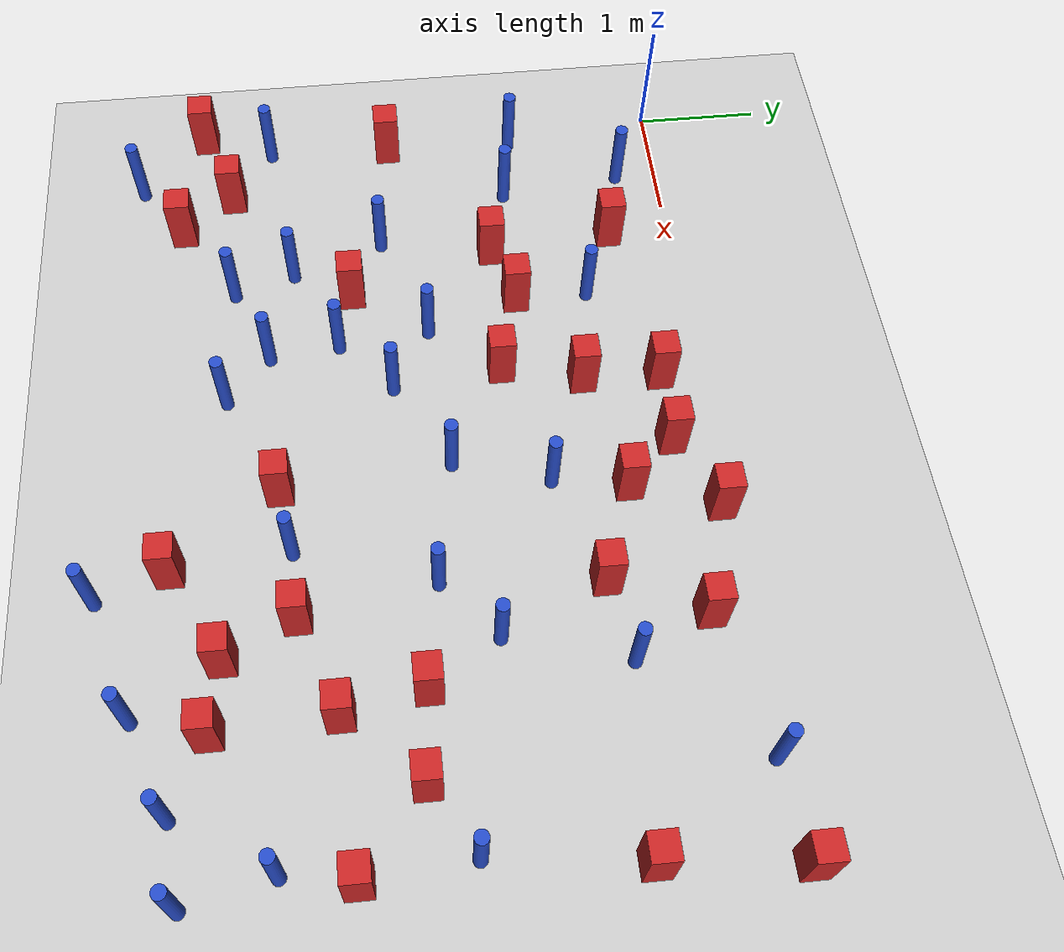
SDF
<sdf version="1.6">
 <world name="default">
  <model name="ground_plane">
   <static>1</static>
   <link name="link">
    <collision name="collision">
     <geometry><plane><normal>0 0 1</normal><size>100 100</size></plane></geometry>
     <surface><friction><ode><mu>100</mu><mu2>50</mu2></ode></friction></surface>
    </collision>
    <visual name="visual">
     <cast_shadows>0</cast_shadows>
     <geometry><plane><normal>0 0 1</normal><size>100 100</size></plane></geometry>
     <material>
      <ambient>1.0 1.0 1.0 1.0</ambient>
      <diffuse>0.8 0.8 0.8 1.0</diffuse>
      <specular>0.01 0.01 0.01 1.000000</specular>
     </material>
    </visual>
   </link>
  </model>
  <model name="NamedLocations">
   <static>true</static>
   <link name="DefaultStart"><pose>8.5 0 0 0 0 3.14</pose></link>
  </model>
  <model name="square_post_obstacle5">
   <static>true</static>
   <pose>5.25231052275 -3.78582455542 8.22691968438e-08 7.2212513382e-06 -7.54495500217e-07 2.29674213826e-05</pose>
   <link name="link">
    <pose>0 0 0.25 0 -0 0</pose>
    <inertial>
     <mass>100</mass>
     <inertia>
      <ixx>0.166667</ixx>
      <ixy>0</ixy>
      <ixz>0</ixz>
      <iyy>0.166667</iyy>
      <iyz>0</iyz>
      <izz>0.166667</izz>
     </inertia>
    </inertial>
    <collision name="collision"><geometry><box><size>.2 .2 .5</size></box></geometry></collision>
    <visual name="visual">
     <geometry><box><size>.2 .2 .5</size></box></geometry>
     <material>
      <script><name>Gazebo/Red</name><uri>file://media/materials/scripts/gazebo.material</uri></script>
     </material>
    </visual>
   </link>
  </model>
  <model name="square_post_obstacle7">
   <static>true</static>
   <pose>4.39493751588 -0.99961755812 8.22691968438e-08 7.2212513382e-06 -7.54495500217e-07 2.29674213826e-05</pose>
   <link name="link">
    <pose>0 0 0.25 0 -0 0</pose>
    <inertial>
     <mass>100</mass>
     <inertia>
      <ixx>0.166667</ixx>
      <ixy>0</ixy>
      <ixz>0</ixz>
      <iyy>0.166667</iyy>
      <iyz>0</iyz>
      <izz>0.166667</izz>
     </inertia>
    </inertial>
    <collision name="collision"><geometry><box><size>.2 .2 .5</size></box></geometry></collision>
    <visual name="visual">
     <geometry><box><size>.2 .2 .5</size></box></geometry>
     <material>
      <script><name>Gazebo/Red</name><uri>file://media/materials/scripts/gazebo.material</uri></script>
     </material>
    </visual>
   </link>
  </model>
  <model name="pole_obstacle8">
   <static>true</static>
   <pose>3.5580969233 -1.27488062741 2.88873142074e-08 -9.90536689395e-09 4.60219949e-07 -1.20965994953e-07</pose>
   <link name="link">
    <pose>0 0 0.3 0 -0 0</pose>
    <inertial>
     <mass>1</mass>
     <inertia><ixx>0.145833</ixx><ixy>0</ixy><ixz>0</ixz><iyy>0.145833</iyy><iyz>0</iyz><izz>0.125</izz></inertia>
    </inertial>
    <collision name="collision">
     <geometry><cylinder><radius>0.05</radius><length>.6</length></cylinder></geometry>
    </collision>
    <visual name="visual">
     <geometry><cylinder><radius>0.05</radius><length>.6</length></cylinder></geometry>
     <material>
      <script><name>Gazebo/Blue</name><uri>file://media/materials/scripts/gazebo.material</uri></script>
     </material>
    </visual>
   </link>
  </model>
  <model name="square_post_obstacle20">
   <static>true</static>
   <pose>-0.0746601059018 -3.83380512901 8.22691968438e-08 7.2212513382e-06 -7.54495500217e-07 2.29674213826e-05</pose>
   <link name="link">
    <pose>0 0 0.25 0 -0 0</pose>
    <inertial>
     <mass>100</mass>
     <inertia>
      <ixx>0.166667</ixx>
      <ixy>0</ixy>
      <ixz>0</ixz>
      <iyy>0.166667</iyy>
      <iyz>0</iyz>
      <izz>0.166667</izz>
     </inertia>
    </inertial>
    <collision name="collision"><geometry><box><size>.2 .2 .5</size></box></geometry></collision>
    <visual name="visual">
     <geometry><box><size>.2 .2 .5</size></box></geometry>
     <material>
      <script><name>Gazebo/Red</name><uri>file://media/materials/scripts/gazebo.material</uri></script>
     </material>
    </visual>
   </link>
  </model>
  <model name="pole_obstacle24">
   <static>true</static>
   <pose>4.74711065186 -1.78429613394 2.88873142074e-08 -9.90536689445e-09 4.60219948999e-07 -1.20965994956e-07</pose>
   <link name="link">
    <pose>0 0 0.3 0 -0 0</pose>
    <inertial>
     <mass>1</mass>
     <inertia><ixx>0.145833</ixx><ixy>0</ixy><ixz>0</ixz><iyy>0.145833</iyy><iyz>0</iyz><izz>0.125</izz></inertia>
    </inertial>
    <collision name="collision">
     <geometry><cylinder><radius>0.05</radius><length>.6</length></cylinder></geometry>
    </collision>
    <visual name="visual">
     <geometry><cylinder><radius>0.05</radius><length>.6</length></cylinder></geometry>
     <material>
      <script><name>Gazebo/Blue</name><uri>file://media/materials/scripts/gazebo.material</uri></script>
     </material>
    </visual>
   </link>
  </model>
  <model name="pole_obstacle31">
   <static>true</static>
   <pose>6.34164546797 -3.9783119384 2.88873142074e-08 -9.90536690067e-09 4.60219948984e-07 -1.20965994963e-07</pose>
   <link name="link">
    <pose>0 0 0.3 0 -0 0</pose>
    <inertial>
     <mass>1</mass>
     <inertia><ixx>0.145833</ixx><ixy>0</ixy><ixz>0</ixz><iyy>0.145833</iyy><iyz>0</iyz><izz>0.125</izz></inertia>
    </inertial>
    <collision name="collision">
     <geometry><cylinder><radius>0.05</radius><length>.6</length></cylinder></geometry>
    </collision>
    <visual name="visual">
     <geometry><cylinder><radius>0.05</radius><length>.6</length></cylinder></geometry>
     <material>
      <script><name>Gazebo/Blue</name><uri>file://media/materials/scripts/gazebo.material</uri></script>
     </material>
    </visual>
   </link>
  </model>
  <model name="pole_obstacle33">
   <static>true</static>
   <pose>2.20476175612 -2.7829994191 2.88873142074e-08 -9.90536690232e-09 4.6021994898e-07 -1.20965994968e-07</pose>
   <link name="link">
    <pose>0 0 0.3 0 -0 0</pose>
    <inertial>
     <mass>1</mass>
     <inertia><ixx>0.145833</ixx><ixy>0</ixy><ixz>0</ixz><iyy>0.145833</iyy><iyz>0</iyz><izz>0.125</izz></inertia>
    </inertial>
    <collision name="collision">
     <geometry><cylinder><radius>0.05</radius><length>.6</length></cylinder></geometry>
    </collision>
    <visual name="visual">
     <geometry><cylinder><radius>0.05</radius><length>.6</length></cylinder></geometry>
     <material>
      <script><name>Gazebo/Blue</name><uri>file://media/materials/scripts/gazebo.material</uri></script>
     </material>
    </visual>
   </link>
  </model>
  <model name="pole_obstacle34">
   <static>true</static>
   <pose>2.64553999613 -3.66608559205 2.88873142074e-08 -9.90536690232e-09 4.6021994898e-07 -1.20965994968e-07</pose>
   <link name="link">
    <pose>0 0 0.3 0 -0 0</pose>
    <inertial>
     <mass>1</mass>
     <inertia><ixx>0.145833</ixx><ixy>0</ixy><ixz>0</ixz><iyy>0.145833</iyy><iyz>0</iyz><izz>0.125</izz></inertia>
    </inertial>
    <collision name="collision">
     <geometry><cylinder><radius>0.05</radius><length>.6</length></cylinder></geometry>
    </collision>
    <visual name="visual">
     <geometry><cylinder><radius>0.05</radius><length>.6</length></cylinder></geometry>
     <material>
      <script><name>Gazebo/Blue</name><uri>file://media/materials/scripts/gazebo.material</uri></script>
     </material>
    </visual>
   </link>
  </model>
  <model name="square_post_obstacle39">
   <static>true</static>
   <pose>2.54407811036 -1.54122637929 8.22691968438e-08 7.2212513382e-06 -7.54495500217e-07 2.29674213826e-05</pose>
   <link name="link">
    <pose>0 0 0.25 0 -0 0</pose>
    <inertial>
     <mass>100</mass>
     <inertia>
      <ixx>0.166667</ixx>
      <ixy>0</ixy>
      <ixz>0</ixz>
      <iyy>0.166667</iyy>
      <iyz>0</iyz>
      <izz>0.166667</izz>
     </inertia>
    </inertial>
    <collision name="collision"><geometry><box><size>.2 .2 .5</size></box></geometry></collision>
    <visual name="visual">
     <geometry><box><size>.2 .2 .5</size></box></geometry>
     <material>
      <script><name>Gazebo/Red</name><uri>file://media/materials/scripts/gazebo.material</uri></script>
     </material>
    </visual>
   </link>
  </model>
  <model name="pole_obstacle39">
   <static>true</static>
   <pose>1.46683004817 -3.11833160648 2.88873142074e-08 -9.90536689791e-09 4.6021994899e-07 -1.20965994959e-07</pose>
   <link name="link">
    <pose>0 0 0.3 0 -0 0</pose>
    <inertial>
     <mass>1</mass>
     <inertia><ixx>0.145833</ixx><ixy>0</ixy><ixz>0</ixz><iyy>0.145833</iyy><iyz>0</iyz><izz>0.125</izz></inertia>
    </inertial>
    <collision name="collision">
     <geometry><cylinder><radius>0.05</radius><length>.6</length></cylinder></geometry>
    </collision>
    <visual name="visual">
     <geometry><cylinder><radius>0.05</radius><length>.6</length></cylinder></geometry>
     <material>
      <script><name>Gazebo/Blue</name><uri>file://media/materials/scripts/gazebo.material</uri></script>
     </material>
    </visual>
   </link>
  </model>
  <model name="square_post_obstacle45">
   <static>true</static>
   <pose>1.27861284913 -0.506588063698 8.22691968438e-08 7.22125133819e-06 -7.54495500217e-07 2.29674213826e-05</pose>
   <link name="link">
    <pose>0 0 0.25 0 -0 0</pose>
    <inertial>
     <mass>100</mass>
     <inertia>
      <ixx>0.166667</ixx>
      <ixy>0</ixy>
      <ixz>0</ixz>
      <iyy>0.166667</iyy>
      <iyz>0</iyz>
      <izz>0.166667</izz>
     </inertia>
    </inertial>
    <collision name="collision"><geometry><box><size>.2 .2 .5</size></box></geometry></collision>
    <visual name="visual">
     <geometry><box><size>.2 .2 .5</size></box></geometry>
     <material>
      <script><name>Gazebo/Red</name><uri>file://media/materials/scripts/gazebo.material</uri></script>
     </material>
    </visual>
   </link>
  </model>
  <model name="square_post_obstacle53">
   <static>true</static>
   <pose>2.69473295244 -0.924964756246 8.22691968438e-08 7.2212513382e-06 -7.54495500217e-07 2.29674213826e-05</pose>
   <link name="link">
    <pose>0 0 0.25 0 -0 0</pose>
    <inertial>
     <mass>100</mass>
     <inertia>
      <ixx>0.166667</ixx>
      <ixy>0</ixy>
      <ixz>0</ixz>
      <iyy>0.166667</iyy>
      <iyz>0</iyz>
      <izz>0.166667</izz>
     </inertia>
    </inertial>
    <collision name="collision"><geometry><box><size>.2 .2 .5</size></box></geometry></collision>
    <visual name="visual">
     <geometry><box><size>.2 .2 .5</size></box></geometry>
     <material>
      <script><name>Gazebo/Red</name><uri>file://media/materials/scripts/gazebo.material</uri></script>
     </material>
    </visual>
   </link>
  </model>
  <model name="pole_obstacle51">
   <static>true</static>
   <pose>1.62181083183 -3.59654554186 2.88873142074e-08 -9.90536689791e-09 4.6021994899e-07 -1.20965994959e-07</pose>
   <link name="link">
    <pose>0 0 0.3 0 -0 0</pose>
    <inertial>
     <mass>1</mass>
     <inertia><ixx>0.145833</ixx><ixy>0</ixy><ixz>0</ixz><iyy>0.145833</iyy><iyz>0</iyz><izz>0.125</izz></inertia>
    </inertial>
    <collision name="collision">
     <geometry><cylinder><radius>0.05</radius><length>.6</length></cylinder></geometry>
    </collision>
    <visual name="visual">
     <geometry><cylinder><radius>0.05</radius><length>.6</length></cylinder></geometry>
     <material>
      <script><name>Gazebo/Blue</name><uri>file://media/materials/scripts/gazebo.material</uri></script>
     </material>
    </visual>
   </link>
  </model>
  <model name="square_post_obstacle59">
   <static>true</static>
   <pose>3.66049398225 -0.718242615236 8.22691968438e-08 7.2212513382e-06 -7.54495500217e-07 2.29674213826e-05</pose>
   <link name="link">
    <pose>0 0 0.25 0 -0 0</pose>
    <inertial>
     <mass>100</mass>
     <inertia>
      <ixx>0.166667</ixx>
      <ixy>0</ixy>
      <ixz>0</ixz>
      <iyy>0.166667</iyy>
      <iyz>0</iyz>
      <izz>0.166667</izz>
     </inertia>
    </inertial>
    <collision name="collision"><geometry><box><size>.2 .2 .5</size></box></geometry></collision>
    <visual name="visual">
     <geometry><box><size>.2 .2 .5</size></box></geometry>
     <material>
      <script><name>Gazebo/Red</name><uri>file://media/materials/scripts/gazebo.material</uri></script>
     </material>
    </visual>
   </link>
  </model>
  <model name="square_post_obstacle62">
   <static>true</static>
   <pose>5.07637719774 -2.30974172072 8.22691968438e-08 7.2212513382e-06 -7.54495500217e-07 2.29674213826e-05</pose>
   <link name="link">
    <pose>0 0 0.25 0 -0 0</pose>
    <inertial>
     <mass>100</mass>
     <inertia>
      <ixx>0.166667</ixx>
      <ixy>0</ixy>
      <ixz>0</ixz>
      <iyy>0.166667</iyy>
      <iyz>0</iyz>
      <izz>0.166667</izz>
     </inertia>
    </inertial>
    <collision name="collision"><geometry><box><size>.2 .2 .5</size></box></geometry></collision>
    <visual name="visual">
     <geometry><box><size>.2 .2 .5</size></box></geometry>
     <material>
      <script><name>Gazebo/Red</name><uri>file://media/materials/scripts/gazebo.material</uri></script>
     </material>
    </visual>
   </link>
  </model>
  <model name="pole_obstacle68">
   <static>true</static>
   <pose>5.00072936189 -0.885637132545 2.88873142074e-08 -9.90536689837e-09 4.60219948989e-07 -1.2096599496e-07</pose>
   <link name="link">
    <pose>0 0 0.3 0 -0 0</pose>
    <inertial>
     <mass>1</mass>
     <inertia><ixx>0.145833</ixx><ixy>0</ixy><ixz>0</ixz><iyy>0.145833</iyy><iyz>0</iyz><izz>0.125</izz></inertia>
    </inertial>
    <collision name="collision">
     <geometry><cylinder><radius>0.05</radius><length>.6</length></cylinder></geometry>
    </collision>
    <visual name="visual">
     <geometry><cylinder><radius>0.05</radius><length>.6</length></cylinder></geometry>
     <material>
      <script><name>Gazebo/Blue</name><uri>file://media/materials/scripts/gazebo.material</uri></script>
     </material>
    </visual>
   </link>
  </model>
  <model name="pole_obstacle71">
   <static>true</static>
   <pose>0.651517139629 -0.337924589644 2.88873142074e-08 -9.90536689558e-09 4.60219948996e-07 -1.20965994957e-07</pose>
   <link name="link">
    <pose>0 0 0.3 0 -0 0</pose>
    <inertial>
     <mass>1</mass>
     <inertia><ixx>0.145833</ixx><ixy>0</ixy><ixz>0</ixz><iyy>0.145833</iyy><iyz>0</iyz><izz>0.125</izz></inertia>
    </inertial>
    <collision name="collision">
     <geometry><cylinder><radius>0.05</radius><length>.6</length></cylinder></geometry>
    </collision>
    <visual name="visual">
     <geometry><cylinder><radius>0.05</radius><length>.6</length></cylinder></geometry>
     <material>
      <script><name>Gazebo/Blue</name><uri>file://media/materials/scripts/gazebo.material</uri></script>
     </material>
    </visual>
   </link>
  </model>
  <model name="square_post_obstacle79">
   <static>true</static>
   <pose>2.71833655449 -0.324334376529 8.22691968438e-08 7.2212513382e-06 -7.54495500217e-07 2.29674213826e-05</pose>
   <link name="link">
    <pose>0 0 0.25 0 -0 0</pose>
    <inertial>
     <mass>100</mass>
     <inertia>
      <ixx>0.166667</ixx>
      <ixy>0</ixy>
      <ixz>0</ixz>
      <iyy>0.166667</iyy>
      <iyz>0</iyz>
      <izz>0.166667</izz>
     </inertia>
    </inertial>
    <collision name="collision"><geometry><box><size>.2 .2 .5</size></box></geometry></collision>
    <visual name="visual">
     <geometry><box><size>.2 .2 .5</size></box></geometry>
     <material>
      <script><name>Gazebo/Red</name><uri>file://media/materials/scripts/gazebo.material</uri></script>
     </material>
    </visual>
   </link>
  </model>
  <model name="square_post_obstacle83">
   <static>true</static>
   <pose>1.37728152292 -1.49963937345 8.22691968438e-08 7.2212513382e-06 -7.54495500217e-07 2.29674213826e-05</pose>
   <link name="link">
    <pose>0 0 0.25 0 -0 0</pose>
    <inertial>
     <mass>100</mass>
     <inertia>
      <ixx>0.166667</ixx>
      <ixy>0</ixy>
      <ixz>0</ixz>
      <iyy>0.166667</iyy>
      <iyz>0</iyz>
      <izz>0.166667</izz>
     </inertia>
    </inertial>
    <collision name="collision"><geometry><box><size>.2 .2 .5</size></box></geometry></collision>
    <visual name="visual">
     <geometry><box><size>.2 .2 .5</size></box></geometry>
     <material>
      <script><name>Gazebo/Red</name><uri>file://media/materials/scripts/gazebo.material</uri></script>
     </material>
    </visual>
   </link>
  </model>
  <model name="pole_obstacle97">
   <static>true</static>
   <pose>1.20911343873 -2.3919930358 2.88873142074e-08 -9.90536689791e-09 4.6021994899e-07 -1.20965994959e-07</pose>
   <link name="link">
    <pose>0 0 0.3 0 -0 0</pose>
    <inertial>
     <mass>1</mass>
     <inertia><ixx>0.145833</ixx><ixy>0</ixy><ixz>0</ixz><iyy>0.145833</iyy><iyz>0</iyz><izz>0.125</izz></inertia>
    </inertial>
    <collision name="collision">
     <geometry><cylinder><radius>0.05</radius><length>.6</length></cylinder></geometry>
    </collision>
    <visual name="visual">
     <geometry><cylinder><radius>0.05</radius><length>.6</length></cylinder></geometry>
     <material>
      <script><name>Gazebo/Blue</name><uri>file://media/materials/scripts/gazebo.material</uri></script>
     </material>
    </visual>
   </link>
  </model>
  <model name="pole_obstacle98">
   <static>true</static>
   <pose>6.21024450876 -2.07663113503 2.88873142074e-08 -9.90536690245e-09 4.6021994898e-07 -1.20965994966e-07</pose>
   <link name="link">
    <pose>0 0 0.3 0 -0 0</pose>
    <inertial>
     <mass>1</mass>
     <inertia><ixx>0.145833</ixx><ixy>0</ixy><ixz>0</ixz><iyy>0.145833</iyy><iyz>0</iyz><izz>0.125</izz></inertia>
    </inertial>
    <collision name="collision">
     <geometry><cylinder><radius>0.05</radius><length>.6</length></cylinder></geometry>
    </collision>
    <visual name="visual">
     <geometry><cylinder><radius>0.05</radius><length>.6</length></cylinder></geometry>
     <material>
      <script><name>Gazebo/Blue</name><uri>file://media/materials/scripts/gazebo.material</uri></script>
     </material>
    </visual>
   </link>
  </model>
  <model name="pole_obstacle101">
   <static>true</static>
   <pose>4.22439033161 -4.59943757602 2.88873142074e-08 -9.90536690842e-09 4.60219948965e-07 -1.20965994976e-07</pose>
   <link name="link">
    <pose>0 0 0.3 0 -0 0</pose>
    <inertial>
     <mass>1</mass>
     <inertia><ixx>0.145833</ixx><ixy>0</ixy><ixz>0</ixz><iyy>0.145833</iyy><iyz>0</iyz><izz>0.125</izz></inertia>
    </inertial>
    <collision name="collision">
     <geometry><cylinder><radius>0.05</radius><length>.6</length></cylinder></geometry>
    </collision>
    <visual name="visual">
     <geometry><cylinder><radius>0.05</radius><length>.6</length></cylinder></geometry>
     <material>
      <script><name>Gazebo/Blue</name><uri>file://media/materials/scripts/gazebo.material</uri></script>
     </material>
    </visual>
   </link>
  </model>
  <model name="pole_obstacle103">
   <static>true</static>
   <pose>5.78365856 -4.05170592008 2.88873142074e-08 -9.90536690842e-09 4.60219948965e-07 -1.20965994976e-07</pose>
   <link name="link">
    <pose>0 0 0.3 0 -0 0</pose>
    <inertial>
     <mass>1</mass>
     <inertia><ixx>0.145833</ixx><ixy>0</ixy><ixz>0</ixz><iyy>0.145833</iyy><iyz>0</iyz><izz>0.125</izz></inertia>
    </inertial>
    <collision name="collision">
     <geometry><cylinder><radius>0.05</radius><length>.6</length></cylinder></geometry>
    </collision>
    <visual name="visual">
     <geometry><cylinder><radius>0.05</radius><length>.6</length></cylinder></geometry>
     <material>
      <script><name>Gazebo/Blue</name><uri>file://media/materials/scripts/gazebo.material</uri></script>
     </material>
    </visual>
   </link>
  </model>
  <model name="pole_obstacle118">
   <static>true</static>
   <pose>0.126872830667 -3.27652271314 2.88873142074e-08 -9.90536692387e-09 4.60219948929e-07 -1.20965994988e-07</pose>
   <link name="link">
    <pose>0 0 0.3 0 -0 0</pose>
    <inertial>
     <mass>1</mass>
     <inertia><ixx>0.145833</ixx><ixy>0</ixy><ixz>0</ixz><iyy>0.145833</iyy><iyz>0</iyz><izz>0.125</izz></inertia>
    </inertial>
    <collision name="collision">
     <geometry><cylinder><radius>0.05</radius><length>.6</length></cylinder></geometry>
    </collision>
    <visual name="visual">
     <geometry><cylinder><radius>0.05</radius><length>.6</length></cylinder></geometry>
     <material>
      <script><name>Gazebo/Blue</name><uri>file://media/materials/scripts/gazebo.material</uri></script>
     </material>
    </visual>
   </link>
  </model>
  <model name="square_post_obstacle111">
   <static>true</static>
   <pose>5.71397313503 -2.37138300832 8.22691968438e-08 7.2212513382e-06 -7.54495500217e-07 2.29674213826e-05</pose>
   <link name="link">
    <pose>0 0 0.25 0 -0 0</pose>
    <inertial>
     <mass>100</mass>
     <inertia>
      <ixx>0.166667</ixx>
      <ixy>0</ixy>
      <ixz>0</ixz>
      <iyy>0.166667</iyy>
      <iyz>0</iyz>
      <izz>0.166667</izz>
     </inertia>
    </inertial>
    <collision name="collision"><geometry><box><size>.2 .2 .5</size></box></geometry></collision>
    <visual name="visual">
     <geometry><box><size>.2 .2 .5</size></box></geometry>
     <material>
      <script><name>Gazebo/Red</name><uri>file://media/materials/scripts/gazebo.material</uri></script>
     </material>
    </visual>
   </link>
  </model>
  <model name="pole_obstacle123">
   <static>true</static>
   <pose>6.19863366548 -3.34782479325 2.88873142074e-08 -9.90536690245e-09 4.6021994898e-07 -1.20965994966e-07</pose>
   <link name="link">
    <pose>0 0 0.3 0 -0 0</pose>
    <inertial>
     <mass>1</mass>
     <inertia><ixx>0.145833</ixx><ixy>0</ixy><ixz>0</ixz><iyy>0.145833</iyy><iyz>0</iyz><izz>0.125</izz></inertia>
    </inertial>
    <collision name="collision">
     <geometry><cylinder><radius>0.05</radius><length>.6</length></cylinder></geometry>
    </collision>
    <visual name="visual">
     <geometry><cylinder><radius>0.05</radius><length>.6</length></cylinder></geometry>
     <material>
      <script><name>Gazebo/Blue</name><uri>file://media/materials/scripts/gazebo.material</uri></script>
     </material>
    </visual>
   </link>
  </model>
  <model name="pole_obstacle124">
   <static>true</static>
   <pose>3.34553705609 -1.99699254514 2.88873142074e-08 -9.90536689589e-09 4.60219948995e-07 -1.20965994957e-07</pose>
   <link name="link">
    <pose>0 0 0.3 0 -0 0</pose>
    <inertial>
     <mass>1</mass>
     <inertia><ixx>0.145833</ixx><ixy>0</ixy><ixz>0</ixz><iyy>0.145833</iyy><iyz>0</iyz><izz>0.125</izz></inertia>
    </inertial>
    <collision name="collision">
     <geometry><cylinder><radius>0.05</radius><length>.6</length></cylinder></geometry>
    </collision>
    <visual name="visual">
     <geometry><cylinder><radius>0.05</radius><length>.6</length></cylinder></geometry>
     <material>
      <script><name>Gazebo/Blue</name><uri>file://media/materials/scripts/gazebo.material</uri></script>
     </material>
    </visual>
   </link>
  </model>
  <model name="pole_obstacle139">
   <static>true</static>
   <pose>5.75138282624 -0.0711206350628 2.88873142074e-08 -9.90536689153e-09 4.60219949006e-07 -1.20965994951e-07</pose>
   <link name="link">
    <pose>0 0 0.3 0 -0 0</pose>
    <inertial>
     <mass>1</mass>
     <inertia><ixx>0.145833</ixx><ixy>0</ixy><ixz>0</ixz><iyy>0.145833</iyy><iyz>0</iyz><izz>0.125</izz></inertia>
    </inertial>
    <collision name="collision">
     <geometry><cylinder><radius>0.05</radius><length>.6</length></cylinder></geometry>
    </collision>
    <visual name="visual">
     <geometry><cylinder><radius>0.05</radius><length>.6</length></cylinder></geometry>
     <material>
      <script><name>Gazebo/Blue</name><uri>file://media/materials/scripts/gazebo.material</uri></script>
     </material>
    </visual>
   </link>
  </model>
  <model name="square_post_obstacle126">
   <static>true</static>
   <pose>0.951937427173 -4.00861531492 8.22691968438e-08 7.22125133819e-06 -7.54495500217e-07 2.29674213826e-05</pose>
   <link name="link">
    <pose>0 0 0.25 0 -0 0</pose>
    <inertial>
     <mass>100</mass>
     <inertia>
      <ixx>0.166667</ixx>
      <ixy>0</ixy>
      <ixz>0</ixz>
      <iyy>0.166667</iyy>
      <iyz>0</iyz>
      <izz>0.166667</izz>
     </inertia>
    </inertial>
    <collision name="collision"><geometry><box><size>.2 .2 .5</size></box></geometry></collision>
    <visual name="visual">
     <geometry><box><size>.2 .2 .5</size></box></geometry>
     <material>
      <script><name>Gazebo/Red</name><uri>file://media/materials/scripts/gazebo.material</uri></script>
     </material>
    </visual>
   </link>
  </model>
  <model name="square_post_obstacle128">
   <static>true</static>
   <pose>4.70815853891 -0.314623839095 8.22691968438e-08 7.2212513382e-06 -7.54495500217e-07 2.29674213826e-05</pose>
   <link name="link">
    <pose>0 0 0.25 0 -0 0</pose>
    <inertial>
     <mass>100</mass>
     <inertia>
      <ixx>0.166667</ixx>
      <ixy>0</ixy>
      <ixz>0</ixz>
      <iyy>0.166667</iyy>
      <iyz>0</iyz>
      <izz>0.166667</izz>
     </inertia>
    </inertial>
    <collision name="collision"><geometry><box><size>.2 .2 .5</size></box></geometry></collision>
    <visual name="visual">
     <geometry><box><size>.2 .2 .5</size></box></geometry>
     <material>
      <script><name>Gazebo/Red</name><uri>file://media/materials/scripts/gazebo.material</uri></script>
     </material>
    </visual>
   </link>
  </model>
  <model name="square_post_obstacle135">
   <static>true</static>
   <pose>4.4872487217 -3.17603244453 8.22691968438e-08 7.2212513382e-06 -7.54495500217e-07 2.29674213826e-05</pose>
   <link name="link">
    <pose>0 0 0.25 0 -0 0</pose>
    <inertial>
     <mass>100</mass>
     <inertia>
      <ixx>0.166667</ixx>
      <ixy>0</ixy>
      <ixz>0</ixz>
      <iyy>0.166667</iyy>
      <iyz>0</iyz>
      <izz>0.166667</izz>
     </inertia>
    </inertial>
    <collision name="collision"><geometry><box><size>.2 .2 .5</size></box></geometry></collision>
    <visual name="visual">
     <geometry><box><size>.2 .2 .5</size></box></geometry>
     <material>
      <script><name>Gazebo/Red</name><uri>file://media/materials/scripts/gazebo.material</uri></script>
     </material>
    </visual>
   </link>
  </model>
  <model name="pole_obstacle146">
   <static>true</static>
   <pose>5.1091740648 -4.31907956923 2.88873142074e-08 -9.90536690842e-09 4.60219948965e-07 -1.20965994976e-07</pose>
   <link name="link">
    <pose>0 0 0.3 0 -0 0</pose>
    <inertial>
     <mass>1</mass>
     <inertia><ixx>0.145833</ixx><ixy>0</ixy><ixz>0</ixz><iyy>0.145833</iyy><iyz>0</iyz><izz>0.125</izz></inertia>
    </inertial>
    <collision name="collision">
     <geometry><cylinder><radius>0.05</radius><length>.6</length></cylinder></geometry>
    </collision>
    <visual name="visual">
     <geometry><cylinder><radius>0.05</radius><length>.6</length></cylinder></geometry>
     <material>
      <script><name>Gazebo/Blue</name><uri>file://media/materials/scripts/gazebo.material</uri></script>
     </material>
    </visual>
   </link>
  </model>
  <model name="pole_obstacle148">
   <static>true</static>
   <pose>4.30077741097 -2.1749800853 2.88873142074e-08 -9.90536690245e-09 4.6021994898e-07 -1.20965994966e-07</pose>
   <link name="link">
    <pose>0 0 0.3 0 -0 0</pose>
    <inertial>
     <mass>1</mass>
     <inertia><ixx>0.145833</ixx><ixy>0</ixy><ixz>0</ixz><iyy>0.145833</iyy><iyz>0</iyz><izz>0.125</izz></inertia>
    </inertial>
    <collision name="collision">
     <geometry><cylinder><radius>0.05</radius><length>.6</length></cylinder></geometry>
    </collision>
    <visual name="visual">
     <geometry><cylinder><radius>0.05</radius><length>.6</length></cylinder></geometry>
     <material>
      <script><name>Gazebo/Blue</name><uri>file://media/materials/scripts/gazebo.material</uri></script>
     </material>
    </visual>
   </link>
  </model>
  <model name="square_post_obstacle139">
   <static>true</static>
   <pose>6.34236695522 -0.985701565183 8.22691968438e-08 7.2212513382e-06 -7.54495500217e-07 2.29674213826e-05</pose>
   <link name="link">
    <pose>0 0 0.25 0 -0 0</pose>
    <inertial>
     <mass>100</mass>
     <inertia>
      <ixx>0.166667</ixx>
      <ixy>0</ixy>
      <ixz>0</ixz>
      <iyy>0.166667</iyy>
      <iyz>0</iyz>
      <izz>0.166667</izz>
     </inertia>
    </inertial>
    <collision name="collision"><geometry><box><size>.2 .2 .5</size></box></geometry></collision>
    <visual name="visual">
     <geometry><box><size>.2 .2 .5</size></box></geometry>
     <material>
      <script><name>Gazebo/Red</name><uri>file://media/materials/scripts/gazebo.material</uri></script>
     </material>
    </visual>
   </link>
  </model>
  <model name="square_post_obstacle140">
   <static>true</static>
   <pose>3.46773946944 -3.27646881182 8.22691968438e-08 7.2212513382e-06 -7.54495500217e-07 2.29674213826e-05</pose>
   <link name="link">
    <pose>0 0 0.25 0 -0 0</pose>
    <inertial>
     <mass>100</mass>
     <inertia>
      <ixx>0.166667</ixx>
      <ixy>0</ixy>
      <ixz>0</ixz>
      <iyy>0.166667</iyy>
      <iyz>0</iyz>
      <izz>0.166667</izz>
     </inertia>
    </inertial>
    <collision name="collision"><geometry><box><size>.2 .2 .5</size></box></geometry></collision>
    <visual name="visual">
     <geometry><box><size>.2 .2 .5</size></box></geometry>
     <material>
      <script><name>Gazebo/Red</name><uri>file://media/materials/scripts/gazebo.material</uri></script>
     </material>
    </visual>
   </link>
  </model>
  <model name="pole_obstacle159">
   <static>true</static>
   <pose>2.12559143675 -2.07253581282 2.88873142074e-08 -9.90536690232e-09 4.6021994898e-07 -1.20965994968e-07</pose>
   <link name="link">
    <pose>0 0 0.3 0 -0 0</pose>
    <inertial>
     <mass>1</mass>
     <inertia><ixx>0.145833</ixx><ixy>0</ixy><ixz>0</ixz><iyy>0.145833</iyy><iyz>0</iyz><izz>0.125</izz></inertia>
    </inertial>
    <collision name="collision">
     <geometry><cylinder><radius>0.05</radius><length>.6</length></cylinder></geometry>
    </collision>
    <visual name="visual">
     <geometry><cylinder><radius>0.05</radius><length>.6</length></cylinder></geometry>
     <material>
      <script><name>Gazebo/Blue</name><uri>file://media/materials/scripts/gazebo.material</uri></script>
     </material>
    </visual>
   </link>
  </model>
  <model name="square_post_obstacle157">
   <static>true</static>
   <pose>4.04915297837 -4.06937655511 8.22691968438e-08 7.2212513382e-06 -7.54495500217e-07 2.29674213826e-05</pose>
   <link name="link">
    <pose>0 0 0.25 0 -0 0</pose>
    <inertial>
     <mass>100</mass>
     <inertia>
      <ixx>0.166667</ixx>
      <ixy>0</ixy>
      <ixz>0</ixz>
      <iyy>0.166667</iyy>
      <iyz>0</iyz>
      <izz>0.166667</izz>
     </inertia>
    </inertial>
    <collision name="collision"><geometry><box><size>.2 .2 .5</size></box></geometry></collision>
    <visual name="visual">
     <geometry><box><size>.2 .2 .5</size></box></geometry>
     <material>
      <script><name>Gazebo/Red</name><uri>file://media/materials/scripts/gazebo.material</uri></script>
     </material>
    </visual>
   </link>
  </model>
  <model name="pole_obstacle165">
   <static>true</static>
   <pose>0.769194883767 -1.32213522026 2.88873142074e-08 -9.90536689855e-09 4.60219948989e-07 -1.20965994962e-07</pose>
   <link name="link">
    <pose>0 0 0.3 0 -0 0</pose>
    <inertial>
     <mass>1</mass>
     <inertia><ixx>0.145833</ixx><ixy>0</ixy><ixz>0</ixz><iyy>0.145833</iyy><iyz>0</iyz><izz>0.125</izz></inertia>
    </inertial>
    <collision name="collision">
     <geometry><cylinder><radius>0.05</radius><length>.6</length></cylinder></geometry>
    </collision>
    <visual name="visual">
     <geometry><cylinder><radius>0.05</radius><length>.6</length></cylinder></geometry>
     <material>
      <script><name>Gazebo/Blue</name><uri>file://media/materials/scripts/gazebo.material</uri></script>
     </material>
    </visual>
   </link>
  </model>
  <model name="square_post_obstacle162">
   <static>true</static>
   <pose>1.87625756065 -1.35134468545 8.22691968438e-08 7.2212513382e-06 -7.54495500217e-07 2.29674213826e-05</pose>
   <link name="link">
    <pose>0 0 0.25 0 -0 0</pose>
    <inertial>
     <mass>100</mass>
     <inertia>
      <ixx>0.166667</ixx>
      <ixy>0</ixy>
      <ixz>0</ixz>
      <iyy>0.166667</iyy>
      <iyz>0</iyz>
      <izz>0.166667</izz>
     </inertia>
    </inertial>
    <collision name="collision"><geometry><box><size>.2 .2 .5</size></box></geometry></collision>
    <visual name="visual">
     <geometry><box><size>.2 .2 .5</size></box></geometry>
     <material>
      <script><name>Gazebo/Red</name><uri>file://media/materials/scripts/gazebo.material</uri></script>
     </material>
    </visual>
   </link>
  </model>
  <model name="pole_obstacle172">
   <static>true</static>
   <pose>2.63637982414 -2.3838747776 2.88873142074e-08 -9.90536690232e-09 4.6021994898e-07 -1.20965994968e-07</pose>
   <link name="link">
    <pose>0 0 0.3 0 -0 0</pose>
    <inertial>
     <mass>1</mass>
     <inertia><ixx>0.145833</ixx><ixy>0</ixy><ixz>0</ixz><iyy>0.145833</iyy><iyz>0</iyz><izz>0.125</izz></inertia>
    </inertial>
    <collision name="collision">
     <geometry><cylinder><radius>0.05</radius><length>.6</length></cylinder></geometry>
    </collision>
    <visual name="visual">
     <geometry><cylinder><radius>0.05</radius><length>.6</length></cylinder></geometry>
     <material>
      <script><name>Gazebo/Blue</name><uri>file://media/materials/scripts/gazebo.material</uri></script>
     </material>
    </visual>
   </link>
  </model>
  <model name="pole_obstacle173">
   <static>true</static>
   <pose>0.465058878206 -4.3647250808 2.88873142074e-08 -9.90536689616e-09 4.60219948994e-07 -1.20965994955e-07</pose>
   <link name="link">
    <pose>0 0 0.3 0 -0 0</pose>
    <inertial>
     <mass>1</mass>
     <inertia><ixx>0.145833</ixx><ixy>0</ixy><ixz>0</ixz><iyy>0.145833</iyy><iyz>0</iyz><izz>0.125</izz></inertia>
    </inertial>
    <collision name="collision">
     <geometry><cylinder><radius>0.05</radius><length>.6</length></cylinder></geometry>
    </collision>
    <visual name="visual">
     <geometry><cylinder><radius>0.05</radius><length>.6</length></cylinder></geometry>
     <material>
      <script><name>Gazebo/Blue</name><uri>file://media/materials/scripts/gazebo.material</uri></script>
     </material>
    </visual>
   </link>
  </model>
  <model name="square_post_obstacle167">
   <static>true</static>
   <pose>6.43601787709 0.000498822086337 8.22691968438e-08 7.2212513382e-06 -7.54495500217e-07 2.29674213826e-05</pose>
   <link name="link">
    <pose>0 0 0.25 0 -0 0</pose>
    <inertial>
     <mass>100</mass>
     <inertia>
      <ixx>0.166667</ixx>
      <ixy>0</ixy>
      <ixz>0</ixz>
      <iyy>0.166667</iyy>
      <iyz>0</iyz>
      <izz>0.166667</izz>
     </inertia>
    </inertial>
    <collision name="collision"><geometry><box><size>.2 .2 .5</size></box></geometry></collision>
    <visual name="visual">
     <geometry><box><size>.2 .2 .5</size></box></geometry>
     <material>
      <script><name>Gazebo/Red</name><uri>file://media/materials/scripts/gazebo.material</uri></script>
     </material>
    </visual>
   </link>
  </model>
  <model name="pole_obstacle180">
   <static>true</static>
   <pose>2.26887305364 -3.32814789119 2.88873142074e-08 -9.90536690232e-09 4.6021994898e-07 -1.20965994968e-07</pose>
   <link name="link">
    <pose>0 0 0.3 0 -0 0</pose>
    <inertial>
     <mass>1</mass>
     <inertia><ixx>0.145833</ixx><ixy>0</ixy><ixz>0</ixz><iyy>0.145833</iyy><iyz>0</iyz><izz>0.125</izz></inertia>
    </inertial>
    <collision name="collision">
     <geometry><cylinder><radius>0.05</radius><length>.6</length></cylinder></geometry>
    </collision>
    <visual name="visual">
     <geometry><cylinder><radius>0.05</radius><length>.6</length></cylinder></geometry>
     <material>
      <script><name>Gazebo/Blue</name><uri>file://media/materials/scripts/gazebo.material</uri></script>
     </material>
    </visual>
   </link>
  </model>
  <model name="square_post_obstacle170">
   <static>true</static>
   <pose>0.177146050755 -2.27408724118 8.22691968438e-08 7.2212513382e-06 -7.54495500217e-07 2.29674213826e-05</pose>
   <link name="link">
    <pose>0 0 0.25 0 -0 0</pose>
    <inertial>
     <mass>100</mass>
     <inertia>
      <ixx>0.166667</ixx>
      <ixy>0</ixy>
      <ixz>0</ixz>
      <iyy>0.166667</iyy>
      <iyz>0</iyz>
      <izz>0.166667</izz>
     </inertia>
    </inertial>
    <collision name="collision"><geometry><box><size>.2 .2 .5</size></box></geometry></collision>
    <visual name="visual">
     <geometry><box><size>.2 .2 .5</size></box></geometry>
     <material>
      <script><name>Gazebo/Red</name><uri>file://media/materials/scripts/gazebo.material</uri></script>
     </material>
    </visual>
   </link>
  </model>
  <model name="pole_obstacle182">
   <static>true</static>
   <pose>1.86902913061 -0.769985174849 2.88873142074e-08 -9.90536689692e-09 4.60219948993e-07 -1.20965994958e-07</pose>
   <link name="link">
    <pose>0 0 0.3 0 -0 0</pose>
    <inertial>
     <mass>1</mass>
     <inertia><ixx>0.145833</ixx><ixy>0</ixy><ixz>0</ixz><iyy>0.145833</iyy><iyz>0</iyz><izz>0.125</izz></inertia>
    </inertial>
    <collision name="collision">
     <geometry><cylinder><radius>0.05</radius><length>.6</length></cylinder></geometry>
    </collision>
    <visual name="visual">
     <geometry><cylinder><radius>0.05</radius><length>.6</length></cylinder></geometry>
     <material>
      <script><name>Gazebo/Blue</name><uri>file://media/materials/scripts/gazebo.material</uri></script>
     </material>
    </visual>
   </link>
  </model>
  <model name="square_post_obstacle172">
   <static>true</static>
   <pose>5.20756027981 -2.90942971012 8.22691968438e-08 7.2212513382e-06 -7.54495500217e-07 2.29674213826e-05</pose>
   <link name="link">
    <pose>0 0 0.25 0 -0 0</pose>
    <inertial>
     <mass>100</mass>
     <inertia>
      <ixx>0.166667</ixx>
      <ixy>0</ixy>
      <ixz>0</ixz>
      <iyy>0.166667</iyy>
      <iyz>0</iyz>
      <izz>0.166667</izz>
     </inertia>
    </inertial>
    <collision name="collision"><geometry><box><size>.2 .2 .5</size></box></geometry></collision>
    <visual name="visual">
     <geometry><box><size>.2 .2 .5</size></box></geometry>
     <material>
      <script><name>Gazebo/Red</name><uri>file://media/materials/scripts/gazebo.material</uri></script>
     </material>
    </visual>
   </link>
  </model>
  <model name="square_post_obstacle177">
   <static>true</static>
   <pose>3.88474853114 -0.0749675051373 8.22691968438e-08 7.22125133819e-06 -7.54495500217e-07 2.29674213826e-05</pose>
   <link name="link">
    <pose>0 0 0.25 0 -0 0</pose>
    <inertial>
     <mass>100</mass>
     <inertia>
      <ixx>0.166667</ixx>
      <ixy>0</ixy>
      <ixz>0</ixz>
      <iyy>0.166667</iyy>
      <iyz>0</iyz>
      <izz>0.166667</izz>
     </inertia>
    </inertial>
    <collision name="collision"><geometry><box><size>.2 .2 .5</size></box></geometry></collision>
    <visual name="visual">
     <geometry><box><size>.2 .2 .5</size></box></geometry>
     <material>
      <script><name>Gazebo/Red</name><uri>file://media/materials/scripts/gazebo.material</uri></script>
     </material>
    </visual>
   </link>
  </model>
  <model name="square_post_obstacle194">
   <static>true</static>
   <pose>1.72116471964 -2.65541329013 8.22691968438e-08 7.2212513382e-06 -7.54495500217e-07 2.29674213826e-05</pose>
   <link name="link">
    <pose>0 0 0.25 0 -0 0</pose>
    <inertial>
     <mass>100</mass>
     <inertia>
      <ixx>0.166667</ixx>
      <ixy>0</ixy>
      <ixz>0</ixz>
      <iyy>0.166667</iyy>
      <iyz>0</iyz>
      <izz>0.166667</izz>
     </inertia>
    </inertial>
    <collision name="collision"><geometry><box><size>.2 .2 .5</size></box></geometry></collision>
    <visual name="visual">
     <geometry><box><size>.2 .2 .5</size></box></geometry>
     <material>
      <script><name>Gazebo/Red</name><uri>file://media/materials/scripts/gazebo.material</uri></script>
     </material>
    </visual>
   </link>
  </model>
  <model name="square_post_obstacle195">
   <static>true</static>
   <pose>4.74509816651 -3.6958053497 8.22691968438e-08 7.2212513382e-06 -7.54495500217e-07 2.29674213826e-05</pose>
   <link name="link">
    <pose>0 0 0.25 0 -0 0</pose>
    <inertial>
     <mass>100</mass>
     <inertia>
      <ixx>0.166667</ixx>
      <ixy>0</ixy>
      <ixz>0</ixz>
      <iyy>0.166667</iyy>
      <iyz>0</iyz>
      <izz>0.166667</izz>
     </inertia>
    </inertial>
    <collision name="collision"><geometry><box><size>.2 .2 .5</size></box></geometry></collision>
    <visual name="visual">
     <geometry><box><size>.2 .2 .5</size></box></geometry>
     <material>
      <script><name>Gazebo/Red</name><uri>file://media/materials/scripts/gazebo.material</uri></script>
     </material>
    </visual>
   </link>
  </model>
  <model name="square_post_obstacle199">
   <static>true</static>
   <pose>6.28487640598 -2.84675690495 8.22691968438e-08 7.2212513382e-06 -7.54495500217e-07 2.29674213826e-05</pose>
   <link name="link">
    <pose>0 0 0.25 0 -0 0</pose>
    <inertial>
     <mass>100</mass>
     <inertia>
      <ixx>0.166667</ixx>
      <ixy>0</ixy>
      <ixz>0</ixz>
      <iyy>0.166667</iyy>
      <iyz>0</iyz>
      <izz>0.166667</izz>
     </inertia>
    </inertial>
    <collision name="collision"><geometry><box><size>.2 .2 .5</size></box></geometry></collision>
    <visual name="visual">
     <geometry><box><size>.2 .2 .5</size></box></geometry>
     <material>
      <script><name>Gazebo/Red</name><uri>file://media/materials/scripts/gazebo.material</uri></script>
     </material>
    </visual>
   </link>
  </model>
  <model name="pole_obstacle191">
   <static>true</static>
   <pose>3.96725500166 -3.19958012688 2.88873142074e-08 -9.90536690919e-09 4.60219948964e-07 -1.20965994979e-07</pose>
   <link name="link">
    <pose>0 0 0.3 0 -0 0</pose>
    <inertial>
     <mass>1</mass>
     <inertia><ixx>0.145833</ixx><ixy>0</ixy><ixz>0</ixz><iyy>0.145833</iyy><iyz>0</iyz><izz>0.125</izz></inertia>
    </inertial>
    <collision name="collision">
     <geometry><cylinder><radius>0.05</radius><length>.6</length></cylinder></geometry>
    </collision>
    <visual name="visual">
     <geometry><cylinder><radius>0.05</radius><length>.6</length></cylinder></geometry>
     <material>
      <script><name>Gazebo/Blue</name><uri>file://media/materials/scripts/gazebo.material</uri></script>
     </material>
    </visual>
   </link>
  </model>
  <model name="pole_obstacle198">
   <static>true</static>
   <pose>0.189427842967 -1.21905447513 2.88873142074e-08 -9.90536689666e-09 4.60219948993e-07 -1.20965994958e-07</pose>
   <link name="link">
    <pose>0 0 0.3 0 -0 0</pose>
    <inertial>
     <mass>1</mass>
     <inertia><ixx>0.145833</ixx><ixy>0</ixy><ixz>0</ixz><iyy>0.145833</iyy><iyz>0</iyz><izz>0.125</izz></inertia>
    </inertial>
    <collision name="collision">
     <geometry><cylinder><radius>0.05</radius><length>.6</length></cylinder></geometry>
    </collision>
    <visual name="visual">
     <geometry><cylinder><radius>0.05</radius><length>.6</length></cylinder></geometry>
     <material>
      <script><name>Gazebo/Blue</name><uri>file://media/materials/scripts/gazebo.material</uri></script>
     </material>
    </visual>
   </link>
  </model>
  <model name="square_post_obstacle212">
   <static>true</static>
   <pose>3.30325483431 -0.337102224905 8.22691968438e-08 7.2212513382e-06 -7.54495500217e-07 2.29674213826e-05</pose>
   <link name="link">
    <pose>0 0 0.25 0 -0 0</pose>
    <inertial>
     <mass>100</mass>
     <inertia>
      <ixx>0.166667</ixx>
      <ixy>0</ixy>
      <ixz>0</ixz>
      <iyy>0.166667</iyy>
      <iyz>0</iyz>
      <izz>0.166667</izz>
     </inertia>
    </inertial>
    <collision name="collision"><geometry><box><size>.2 .2 .5</size></box></geometry></collision>
    <visual name="visual">
     <geometry><box><size>.2 .2 .5</size></box></geometry>
     <material>
      <script><name>Gazebo/Red</name><uri>file://media/materials/scripts/gazebo.material</uri></script>
     </material>
    </visual>
   </link>
  </model>
  <model name="square_post_obstacle213">
   <static>true</static>
   <pose>0.623361725761 -3.60055217036 8.22691968438e-08 7.2212513382e-06 -7.54495500217e-07 2.29674213826e-05</pose>
   <link name="link">
    <pose>0 0 0.25 0 -0 0</pose>
    <inertial>
     <mass>100</mass>
     <inertia>
      <ixx>0.166667</ixx>
      <ixy>0</ixy>
      <ixz>0</ixz>
      <iyy>0.166667</iyy>
      <iyz>0</iyz>
      <izz>0.166667</izz>
     </inertia>
    </inertial>
    <collision name="collision"><geometry><box><size>.2 .2 .5</size></box></geometry></collision>
    <visual name="visual">
     <geometry><box><size>.2 .2 .5</size></box></geometry>
     <material>
      <script><name>Gazebo/Red</name><uri>file://media/materials/scripts/gazebo.material</uri></script>
     </material>
    </visual>
   </link>
  </model>
 </world>
</sdf>
